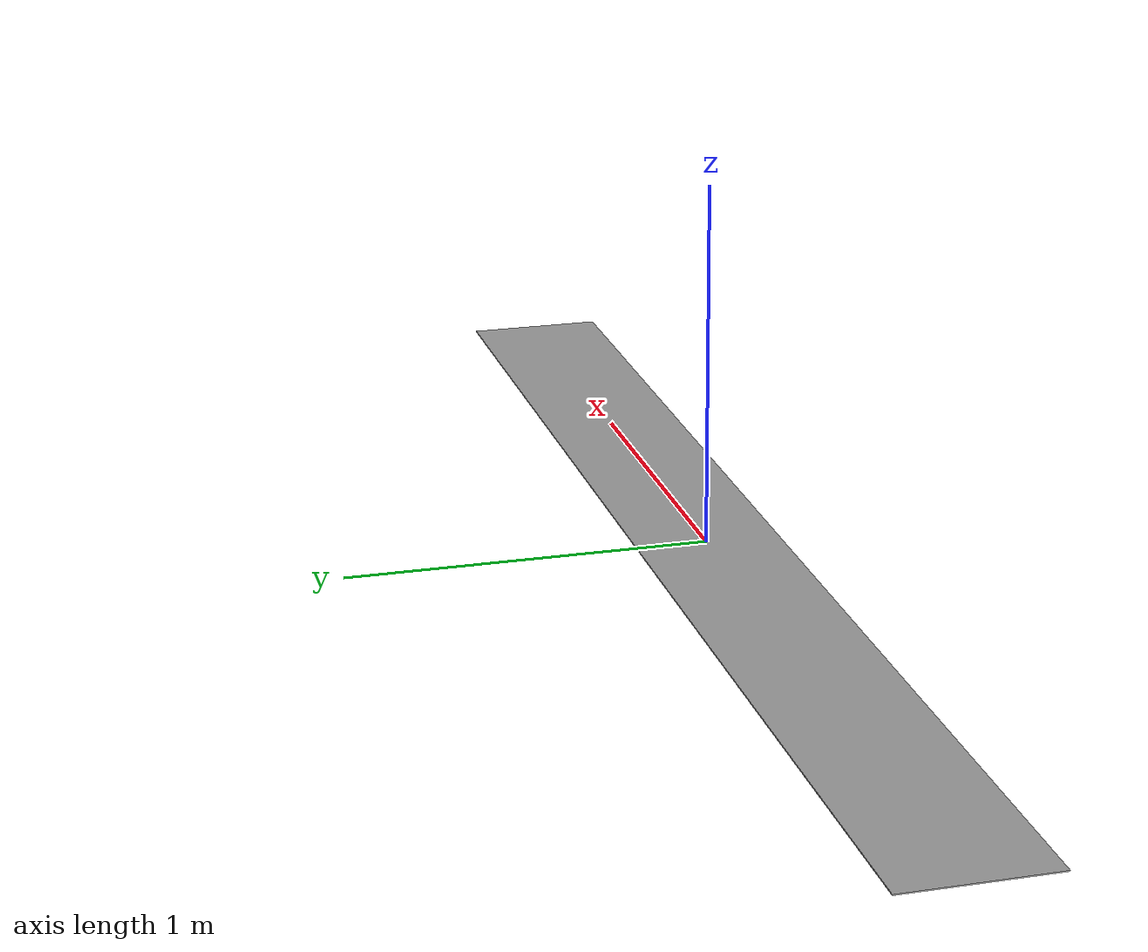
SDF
<?xml version="1.0" ?>
<sdf version="1.5">
  <model name="mbzirc_ugv_assembly_wall">
    <static>true</static>
    <link name="link">
      <pose>0 0 0.003 0 0 0</pose>

      <collision name="collision_top_plate">
        <geometry>
          <box>
            <size>4.0 0.4 0.003</size>
          </box>
        </geometry>
      </collision>

      <visual name="visual_top_plate">
        <pose>0 0 0 0 0 0</pose>
        <geometry>
          <box>
            <size>4.0 0.4 0.003</size>
          </box>
        </geometry>
        <material>
          <script>
            <name>Gazebo/Grey</name>
            <uri>file://media/materials/scripts/gazebo.material</uri>
          </script>
        </material>
      </visual>

    </link>
  </model>
</sdf>
